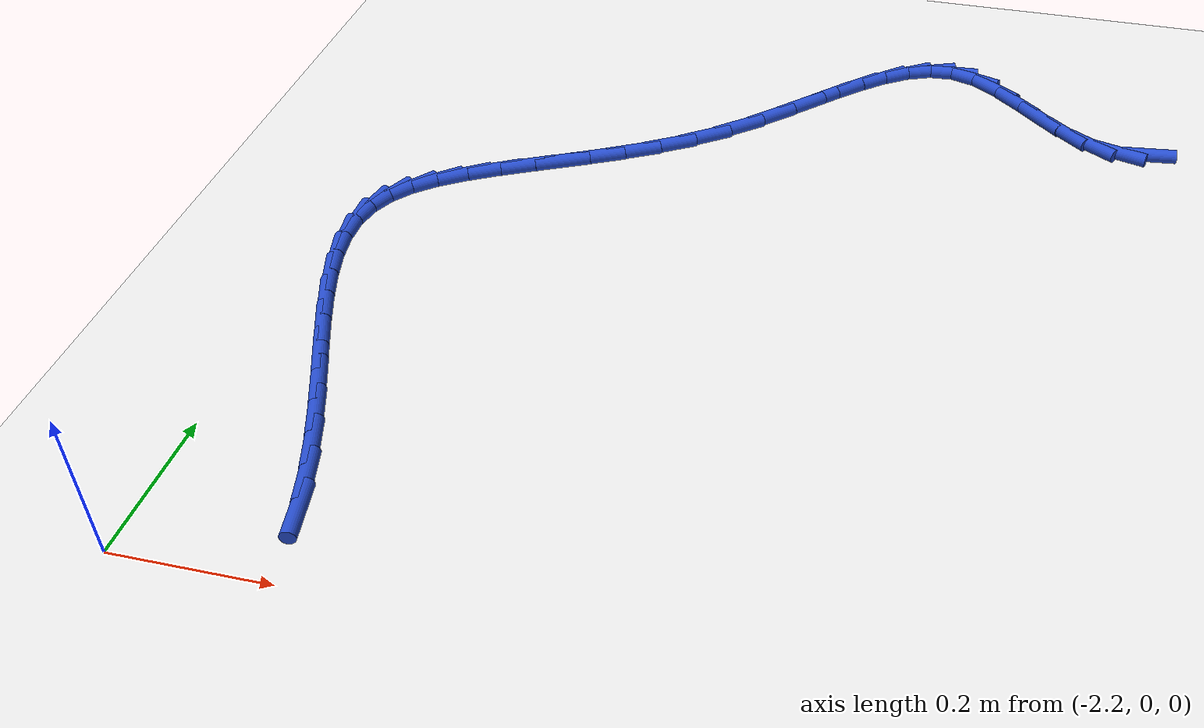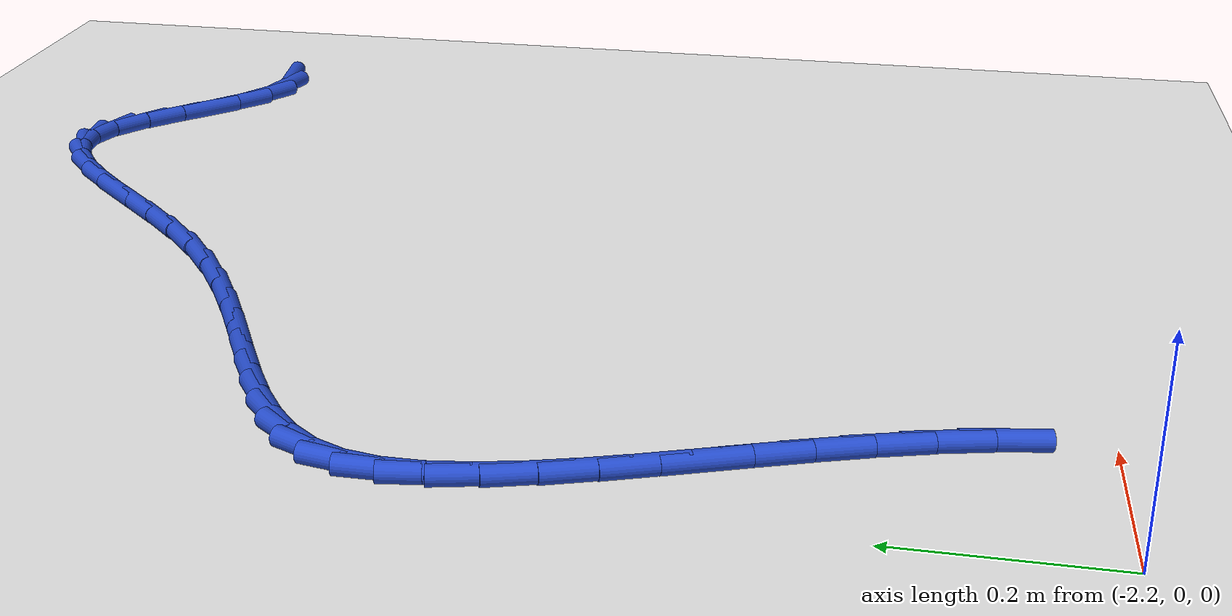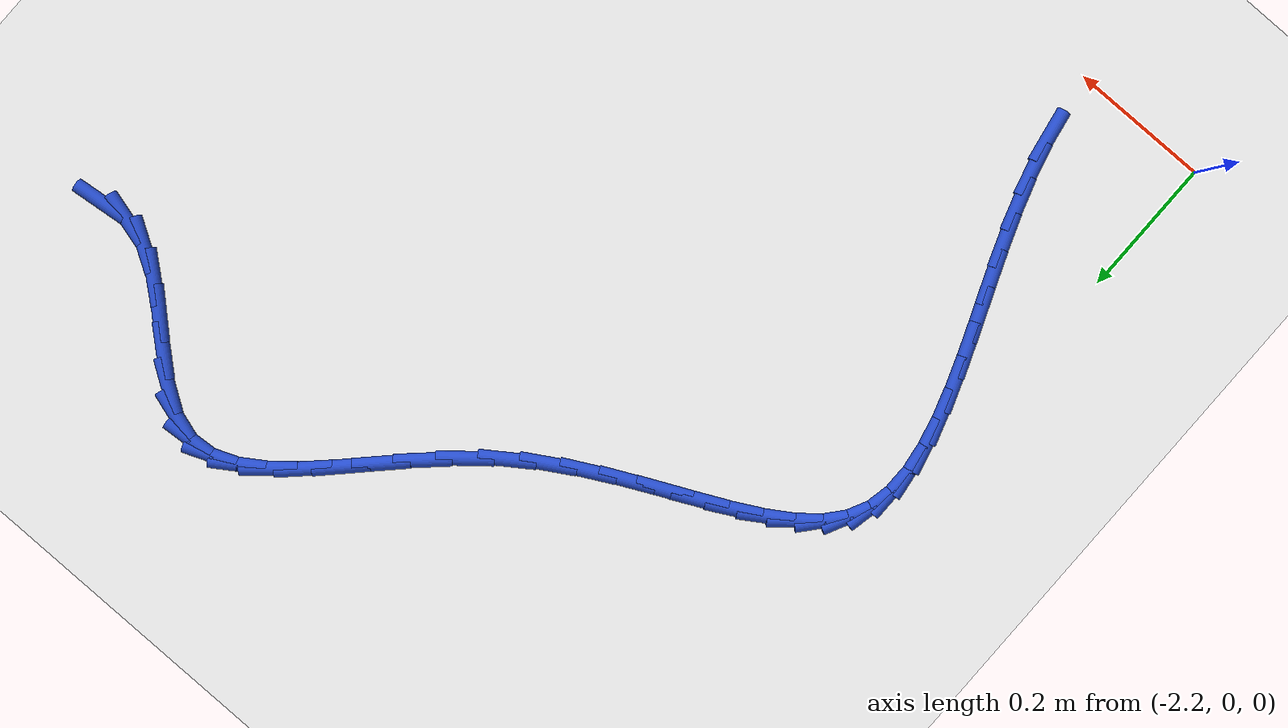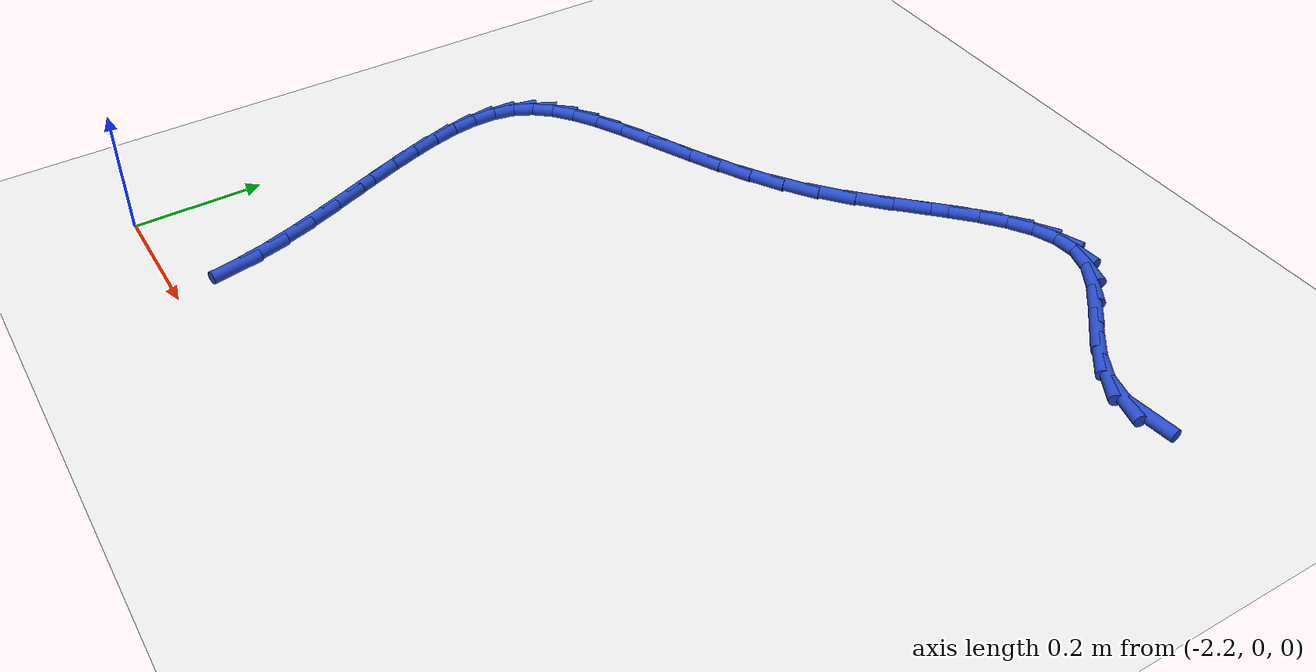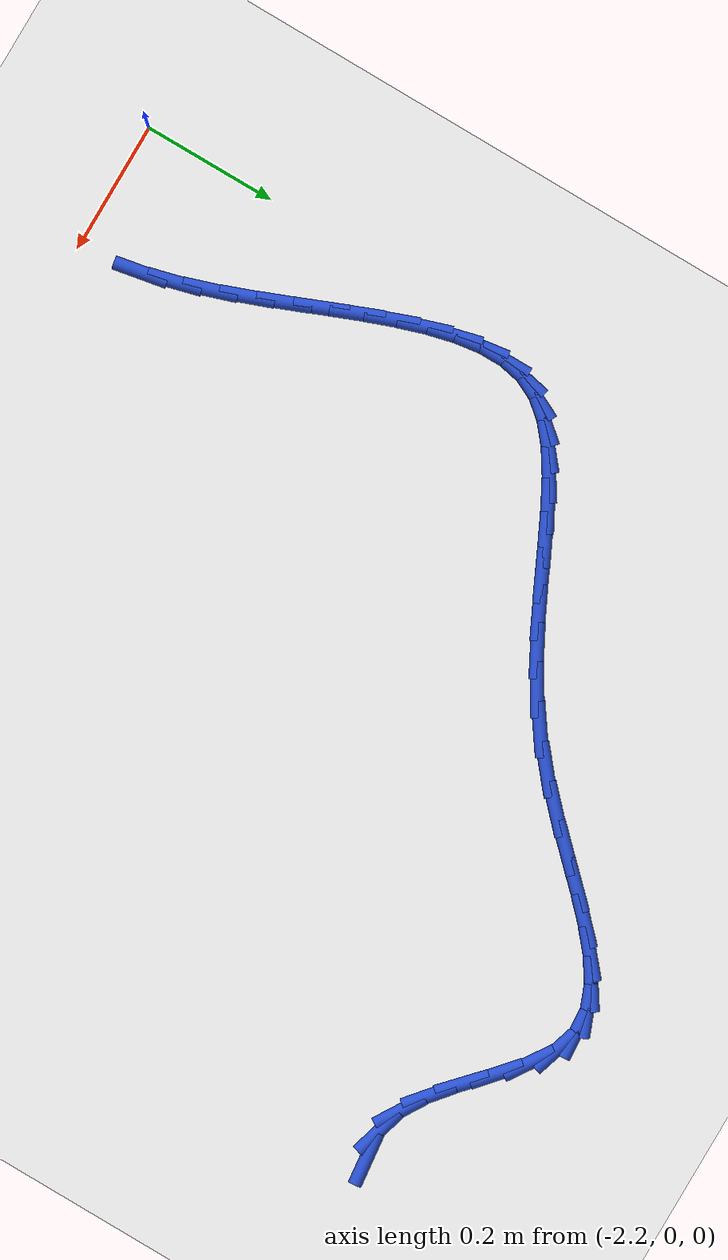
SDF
<sdf version="1.6">
 <world name="default">
  <model name="ground_plane">
   <static>1</static>
   <link name="link">
    <collision name="collision">
     <geometry><plane><normal>0 0 1</normal><size>100 100</size></plane></geometry>
     <surface><friction><ode><mu>100</mu><mu2>50</mu2></ode></friction></surface>
    </collision>
    <visual name="visual">
     <cast_shadows>0</cast_shadows>
     <geometry><plane><normal>0 0 1</normal><size>100 100</size></plane></geometry>
     <material>
      <script><uri>file://media/materials/scripts/gazebo.material</uri><name>Gazebo/WhiteGlow</name></script>
     </material>
    </visual>
   </link>
  </model>
  <model name="line">
   <link name="link_41">
    <pose>-1.103750602136416 1.0088746341379922 0.01 0 1.57 0.11099285961993188</pose>
    <collision name="collision">
     <geometry><cylinder><radius>0.01</radius><length>0.08</length></cylinder></geometry>
    </collision>
    <visual name="visual">
     <material>
      <script><name>Gazebo/Blue</name><uri>file://media/materials/scripts/gazebo.material</uri></script>
     </material>
     <geometry><cylinder><radius>0.01</radius><length>0.08</length></cylinder></geometry>
    </visual>
   </link>
   <link name="link_42">
    <pose>-1.145327510333015 1.0042408500538604 0.01 0 1.57 -0.2673106754995282</pose>
    <collision name="collision">
     <geometry><cylinder><radius>0.01</radius><length>0.08</length></cylinder></geometry>
    </collision>
    <visual name="visual">
     <material>
      <script><name>Gazebo/Blue</name><uri>file://media/materials/scripts/gazebo.material</uri></script>
     </material>
     <geometry><cylinder><radius>0.01</radius><length>0.08</length></cylinder></geometry>
    </visual>
   </link>
   <link name="link_43">
    <pose>-1.185801704541654 1.015325313987004 0.01 0 1.57 -0.5500484894430149</pose>
    <collision name="collision">
     <geometry><cylinder><radius>0.01</radius><length>0.08</length></cylinder></geometry>
    </collision>
    <visual name="visual">
     <material>
      <script><name>Gazebo/Blue</name><uri>file://media/materials/scripts/gazebo.material</uri></script>
     </material>
     <geometry><cylinder><radius>0.01</radius><length>0.08</length></cylinder></geometry>
    </visual>
   </link>
   <link name="link_44">
    <pose>-1.2251092704457418 1.0394276101067481 0.01 0 1.57 -0.6948070857699192</pose>
    <collision name="collision">
     <geometry><cylinder><radius>0.01</radius><length>0.08</length></cylinder></geometry>
    </collision>
    <visual name="visual">
     <material>
      <script><name>Gazebo/Blue</name><uri>file://media/materials/scripts/gazebo.material</uri></script>
     </material>
     <geometry><cylinder><radius>0.01</radius><length>0.08</length></cylinder></geometry>
    </visual>
   </link>
   <link name="link_45">
    <pose>-1.2633729558371893 1.071318476171559 0.01 0 1.57 -0.7449077804855623</pose>
    <collision name="collision">
     <geometry><cylinder><radius>0.01</radius><length>0.08</length></cylinder></geometry>
    </collision>
    <visual name="visual">
     <material>
      <script><name>Gazebo/Blue</name><uri>file://media/materials/scripts/gazebo.material</uri></script>
     </material>
     <geometry><cylinder><radius>0.01</radius><length>0.08</length></cylinder></geometry>
    </visual>
   </link>
   <link name="link_46">
    <pose>-1.3007165795532272 1.1057541397153545 0.01 0 1.57 -0.7150632096865299</pose>
    <collision name="collision">
     <geometry><cylinder><radius>0.01</radius><length>0.08</length></cylinder></geometry>
    </collision>
    <visual name="visual">
     <material>
      <script><name>Gazebo/Blue</name><uri>file://media/materials/scripts/gazebo.material</uri></script>
     </material>
     <geometry><cylinder><radius>0.01</radius><length>0.08</length></cylinder></geometry>
    </visual>
   </link>
   <link name="link_47">
    <pose>-1.337263960431084 1.1374908282720522 0.01 0 1.57 -0.5856310860886405</pose>
    <collision name="collision">
     <geometry><cylinder><radius>0.01</radius><length>0.08</length></cylinder></geometry>
    </collision>
    <visual name="visual">
     <material>
      <script><name>Gazebo/Blue</name><uri>file://media/materials/scripts/gazebo.material</uri></script>
     </material>
     <geometry><cylinder><radius>0.01</radius><length>0.08</length></cylinder></geometry>
    </visual>
   </link>
   <link name="link_48">
    <pose>-1.3731389173079915 1.16128476937557 0.01 0 1.57 -0.30109135553639543</pose>
    <collision name="collision">
     <geometry><cylinder><radius>0.01</radius><length>0.08</length></cylinder></geometry>
    </collision>
    <visual name="visual">
     <material>
      <script><name>Gazebo/Blue</name><uri>file://media/materials/scripts/gazebo.material</uri></script>
     </material>
     <geometry><cylinder><radius>0.01</radius><length>0.08</length></cylinder></geometry>
    </visual>
   </link>
   <link name="link_49">
    <pose>-1.4084746636536947 1.1722576649102554 0.01 0 1.57 0.07181933834771394</pose>
    <collision name="collision">
     <geometry><cylinder><radius>0.01</radius><length>0.08</length></cylinder></geometry>
    </collision>
    <visual name="visual">
     <material>
      <script><name>Gazebo/Blue</name><uri>file://media/materials/scripts/gazebo.material</uri></script>
     </material>
     <geometry><cylinder><radius>0.01</radius><length>0.08</length></cylinder></geometry>
    </visual>
   </link>
   <link name="link_50">
    <pose>-1.4435125222052843 1.1697369336089687 0.01 0 1.57 0.3798571072307815</pose>
    <collision name="collision">
     <geometry><cylinder><radius>0.01</radius><length>0.08</length></cylinder></geometry>
    </collision>
    <visual name="visual">
     <material>
      <script><name>Gazebo/Blue</name><uri>file://media/materials/scripts/gazebo.material</uri></script>
     </material>
     <geometry><cylinder><radius>0.01</radius><length>0.08</length></cylinder></geometry>
    </visual>
   </link>
   <link name="link_51">
    <pose>-1.478563043257293 1.1557431167450538 0.01 0 1.57 0.5844545792556328</pose>
    <collision name="collision">
     <geometry><cylinder><radius>0.01</radius><length>0.08</length></cylinder></geometry>
    </collision>
    <visual name="visual">
     <material>
      <script><name>Gazebo/Blue</name><uri>file://media/materials/scripts/gazebo.material</uri></script>
     </material>
     <geometry><cylinder><radius>0.01</radius><length>0.08</length></cylinder></geometry>
    </visual>
   </link>
   <link name="link_52">
    <pose>-1.5139379077421848 1.1323407401929177 0.01 0 1.57 0.706701061994898</pose>
    <collision name="collision">
     <geometry><cylinder><radius>0.01</radius><length>0.08</length></cylinder></geometry>
    </collision>
    <visual name="visual">
     <material>
      <script><name>Gazebo/Blue</name><uri>file://media/materials/scripts/gazebo.material</uri></script>
     </material>
     <geometry><cylinder><radius>0.01</radius><length>0.08</length></cylinder></geometry>
    </visual>
   </link>
   <link name="link_53">
    <pose>-1.5499487965924246 1.1015943298269695 0.01 0 1.57 0.7726197663643234</pose>
    <collision name="collision">
     <geometry><cylinder><radius>0.01</radius><length>0.08</length></cylinder></geometry>
    </collision>
    <visual name="visual">
     <material>
      <script><name>Gazebo/Blue</name><uri>file://media/materials/scripts/gazebo.material</uri></script>
     </material>
     <geometry><cylinder><radius>0.01</radius><length>0.08</length></cylinder></geometry>
    </visual>
   </link>
   <link name="link_54">
    <pose>-1.586907390740476 1.0655684115216166 0.01 0 1.57 0.798603370126141</pose>
    <collision name="collision">
     <geometry><cylinder><radius>0.01</radius><length>0.08</length></cylinder></geometry>
    </collision>
    <visual name="visual">
     <material>
      <script><name>Gazebo/Blue</name><uri>file://media/materials/scripts/gazebo.material</uri></script>
     </material>
     <geometry><cylinder><radius>0.01</radius><length>0.08</length></cylinder></geometry>
    </visual>
   </link>
   <link name="link_55">
    <pose>-1.625125371118803 1.0263275111512673 0.01 0 1.57 0.7929099450823983</pose>
    <collision name="collision">
     <geometry><cylinder><radius>0.01</radius><length>0.08</length></cylinder></geometry>
    </collision>
    <visual name="visual">
     <material>
      <script><name>Gazebo/Blue</name><uri>file://media/materials/scripts/gazebo.material</uri></script>
     </material>
     <geometry><cylinder><radius>0.01</radius><length>0.08</length></cylinder></geometry>
    </visual>
   </link>
   <link name="link_56">
    <pose>-1.6649144186598703 0.9859361545903289 0.01 0 1.57 0.7583618253003256</pose>
    <collision name="collision">
     <geometry><cylinder><radius>0.01</radius><length>0.08</length></cylinder></geometry>
    </collision>
    <visual name="visual">
     <material>
      <script><name>Gazebo/Blue</name><uri>file://media/materials/scripts/gazebo.material</uri></script>
     </material>
     <geometry><cylinder><radius>0.01</radius><length>0.08</length></cylinder></geometry>
    </visual>
   </link>
   <link name="link_57">
    <pose>-1.7065862142961419 0.9464588677132103 0.01 0 1.57 0.6940042047772175</pose>
    <collision name="collision">
     <geometry><cylinder><radius>0.01</radius><length>0.08</length></cylinder></geometry>
    </collision>
    <visual name="visual">
     <material>
      <script><name>Gazebo/Blue</name><uri>file://media/materials/scripts/gazebo.material</uri></script>
     </material>
     <geometry><cylinder><radius>0.01</radius><length>0.08</length></cylinder></geometry>
    </visual>
   </link>
   <link name="link_58">
    <pose>-1.750451790681399 0.9099587492793393 0.01 0 1.57 0.6097994945973204</pose>
    <collision name="collision">
     <geometry><cylinder><radius>0.01</radius><length>0.08</length></cylinder></geometry>
    </collision>
    <visual name="visual">
     <material>
      <script><name>Gazebo/Blue</name><uri>file://media/materials/scripts/gazebo.material</uri></script>
     </material>
     <geometry><cylinder><radius>0.01</radius><length>0.08</length></cylinder></geometry>
    </visual>
   </link>
   <link name="link_59">
    <pose>-1.79649961226512 0.8777887992454287 0.01 0 1.57 0.539164161176824</pose>
    <collision name="collision">
     <geometry><cylinder><radius>0.01</radius><length>0.08</length></cylinder></geometry>
    </collision>
    <visual name="visual">
     <material>
      <script><name>Gazebo/Blue</name><uri>file://media/materials/scripts/gazebo.material</uri></script>
     </material>
     <geometry><cylinder><radius>0.01</radius><length>0.08</length></cylinder></geometry>
    </visual>
   </link>
   <link name="link_60">
    <pose>-1.8438744495910824 0.8494447172381937 0.01 0 1.57 0.48794612212520955</pose>
    <collision name="collision">
     <geometry><cylinder><radius>0.01</radius><length>0.08</length></cylinder></geometry>
    </collision>
    <visual name="visual">
     <material>
      <script><name>Gazebo/Blue</name><uri>file://media/materials/scripts/gazebo.material</uri></script>
     </material>
     <geometry><cylinder><radius>0.01</radius><length>0.08</length></cylinder></geometry>
    </visual>
   </link>
   <link name="link_61">
    <pose>-1.891584837356002 0.8241222944910426 0.01 0 1.57 0.45644271564045774</pose>
    <collision name="collision">
     <geometry><cylinder><radius>0.01</radius><length>0.08</length></cylinder></geometry>
    </collision>
    <visual name="visual">
     <material>
      <script><name>Gazebo/Blue</name><uri>file://media/materials/scripts/gazebo.material</uri></script>
     </material>
     <geometry><cylinder><radius>0.01</radius><length>0.08</length></cylinder></geometry>
    </visual>
   </link>
   <link name="link_62">
    <pose>-1.9386393102565944 0.8010173222373854 0.01 0 1.57 0.4456626570988399</pose>
    <collision name="collision">
     <geometry><cylinder><radius>0.01</radius><length>0.08</length></cylinder></geometry>
    </collision>
    <visual name="visual">
     <material>
      <script><name>Gazebo/Blue</name><uri>file://media/materials/scripts/gazebo.material</uri></script>
     </material>
     <geometry><cylinder><radius>0.01</radius><length>0.08</length></cylinder></geometry>
    </visual>
   </link>
   <link name="link_63">
    <pose>-1.9840464029895775 0.7793255917106305 0.01 0 1.57 0.45799341398217</pose>
    <collision name="collision">
     <geometry><cylinder><radius>0.01</radius><length>0.08</length></cylinder></geometry>
    </collision>
    <visual name="visual">
     <material>
      <script><name>Gazebo/Blue</name><uri>file://media/materials/scripts/gazebo.material</uri></script>
     </material>
     <geometry><cylinder><radius>0.01</radius><length>0.08</length></cylinder></geometry>
    </visual>
   </link>
   <link name="link_64">
    <pose>-2.0268146502516657 0.7582428941441873 0.01 0 1.57 0.4979654377503438</pose>
    <collision name="collision">
     <geometry><cylinder><radius>0.01</radius><length>0.08</length></cylinder></geometry>
    </collision>
    <visual name="visual">
     <material>
      <script><name>Gazebo/Blue</name><uri>file://media/materials/scripts/gazebo.material</uri></script>
     </material>
     <geometry><cylinder><radius>0.01</radius><length>0.08</length></cylinder></geometry>
    </visual>
   </link>
   <link name="link_65">
    <pose>-2.065952586739577 0.7369650207714649 0.01 0 1.57 0.573145476328834</pose>
    <collision name="collision">
     <geometry><cylinder><radius>0.01</radius><length>0.08</length></cylinder></geometry>
    </collision>
    <visual name="visual">
     <material>
      <script><name>Gazebo/Blue</name><uri>file://media/materials/scripts/gazebo.material</uri></script>
     </material>
     <geometry><cylinder><radius>0.01</radius><length>0.08</length></cylinder></geometry>
    </visual>
   </link>
   <link name="link_66">
    <pose>-2.100468747150028 0.7146877628258718 0.01 0 1.57 0.694637917948779</pose>
    <collision name="collision">
     <geometry><cylinder><radius>0.01</radius><length>0.08</length></cylinder></geometry>
    </collision>
    <visual name="visual">
     <material>
      <script><name>Gazebo/Blue</name><uri>file://media/materials/scripts/gazebo.material</uri></script>
     </material>
     <geometry><cylinder><radius>0.01</radius><length>0.08</length></cylinder></geometry>
    </visual>
   </link>
   <link name="link_67">
    <pose>-2.129371666179733 0.6906069115408172 0.01 0 1.57 0.8747842006141604</pose>
    <collision name="collision">
     <geometry><cylinder><radius>0.01</radius><length>0.08</length></cylinder></geometry>
    </collision>
    <visual name="visual">
     <material>
      <script><name>Gazebo/Blue</name><uri>file://media/materials/scripts/gazebo.material</uri></script>
     </material>
     <geometry><cylinder><radius>0.01</radius><length>0.08</length></cylinder></geometry>
    </visual>
   </link>
   <link name="link_68">
    <pose>-2.151669878525411 0.6639182581497103 0.01 0 1.57 1.1161459454538287</pose>
    <collision name="collision">
     <geometry><cylinder><radius>0.01</radius><length>0.08</length></cylinder></geometry>
    </collision>
    <visual name="visual">
     <material>
      <script><name>Gazebo/Blue</name><uri>file://media/materials/scripts/gazebo.material</uri></script>
     </material>
     <geometry><cylinder><radius>0.01</radius><length>0.08</length></cylinder></geometry>
    </visual>
   </link>
   <link name="link_69">
    <pose>-2.166380612444159 0.6338228661180262 0.01 0 1.57 1.371564963683134</pose>
    <collision name="collision">
     <geometry><cylinder><radius>0.01</radius><length>0.08</length></cylinder></geometry>
    </collision>
    <visual name="visual">
     <material>
      <script><name>Gazebo/Blue</name><uri>file://media/materials/scripts/gazebo.material</uri></script>
     </material>
     <geometry><cylinder><radius>0.01</radius><length>0.08</length></cylinder></geometry>
    </visual>
   </link>
   <link name="link_70">
    <pose>-2.1732206761025865 0.5999460609476662 0.01 0 1.57 -1.567781966604484</pose>
    <collision name="collision">
     <geometry><cylinder><radius>0.01</radius><length>0.08</length></cylinder></geometry>
    </collision>
    <visual name="visual">
     <material>
      <script><name>Gazebo/Blue</name><uri>file://media/materials/scripts/gazebo.material</uri></script>
     </material>
     <geometry><cylinder><radius>0.01</radius><length>0.08</length></cylinder></geometry>
    </visual>
   </link>
   <link name="link_71">
    <pose>-2.1731082270705904 0.562641729577716 0.01 0 1.57 -1.422330211176339</pose>
    <collision name="collision">
     <geometry><cylinder><radius>0.01</radius><length>0.08</length></cylinder></geometry>
    </collision>
    <visual name="visual">
     <material>
      <script><name>Gazebo/Blue</name><uri>file://media/materials/scripts/gazebo.material</uri></script>
     </material>
     <geometry><cylinder><radius>0.01</radius><length>0.08</length></cylinder></geometry>
    </visual>
   </link>
   <link name="link_72">
    <pose>-2.1670797629348977 0.5223355265550066 0.01 0 1.57 -1.321709398650757</pose>
    <collision name="collision">
     <geometry><cylinder><radius>0.01</radius><length>0.08</length></cylinder></geometry>
    </collision>
    <visual name="visual">
     <material>
      <script><name>Gazebo/Blue</name><uri>file://media/materials/scripts/gazebo.material</uri></script>
     </material>
     <geometry><cylinder><radius>0.01</radius><length>0.08</length></cylinder></geometry>
    </visual>
   </link>
   <link name="link_73">
    <pose>-2.156171781282237 0.4794531064263683 0.01 0 1.57 -1.254250785126707</pose>
    <collision name="collision">
     <geometry><cylinder><radius>0.01</radius><length>0.08</length></cylinder></geometry>
    </collision>
    <visual name="visual">
     <material>
      <script><name>Gazebo/Blue</name><uri>file://media/materials/scripts/gazebo.material</uri></script>
     </material>
     <geometry><cylinder><radius>0.01</radius><length>0.08</length></cylinder></geometry>
    </visual>
   </link>
   <link name="link_74">
    <pose>-2.141420779699339 0.43442012373863326 0.01 0 1.57 -1.2115885726325022</pose>
    <collision name="collision">
     <geometry><cylinder><radius>0.01</radius><length>0.08</length></cylinder></geometry>
    </collision>
    <visual name="visual">
     <material>
      <script><name>Gazebo/Blue</name><uri>file://media/materials/scripts/gazebo.material</uri></script>
     </material>
     <geometry><cylinder><radius>0.01</radius><length>0.08</length></cylinder></geometry>
    </visual>
   </link>
   <link name="link_75">
    <pose>-2.12386325577293 0.3876622330386319 0.01 0 1.57 -1.1884133707221465</pose>
    <collision name="collision">
     <geometry><cylinder><radius>0.01</radius><length>0.08</length></cylinder></geometry>
    </collision>
    <visual name="visual">
     <material>
      <script><name>Gazebo/Blue</name><uri>file://media/materials/scripts/gazebo.material</uri></script>
     </material>
     <geometry><cylinder><radius>0.01</radius><length>0.08</length></cylinder></geometry>
    </visual>
   </link>
   <link name="link_76">
    <pose>-2.104535707089741 0.33960508887319507 0.01 0 1.57 -1.1817083478428339</pose>
    <collision name="collision">
     <geometry><cylinder><radius>0.01</radius><length>0.08</length></cylinder></geometry>
    </collision>
    <visual name="visual">
     <material>
      <script><name>Gazebo/Blue</name><uri>file://media/materials/scripts/gazebo.material</uri></script>
     </material>
     <geometry><cylinder><radius>0.01</radius><length>0.08</length></cylinder></geometry>
    </visual>
   </link>
   <link name="link_77">
    <pose>-2.084474631236499 0.2906743457891544 0.01 0 1.57 -1.1901741984455527</pose>
    <collision name="collision">
     <geometry><cylinder><radius>0.01</radius><length>0.08</length></cylinder></geometry>
    </collision>
    <visual name="visual">
     <material>
      <script><name>Gazebo/Blue</name><uri>file://media/materials/scripts/gazebo.material</uri></script>
     </material>
     <geometry><cylinder><radius>0.01</radius><length>0.08</length></cylinder></geometry>
    </visual>
   </link>
   <link name="link_78">
    <pose>-2.0647165257999323 0.24129565833334027 0.01 0 1.57 -1.2139211062499127</pose>
    <collision name="collision">
     <geometry><cylinder><radius>0.01</radius><length>0.08</length></cylinder></geometry>
    </collision>
    <visual name="visual">
     <material>
      <script><name>Gazebo/Blue</name><uri>file://media/materials/scripts/gazebo.material</uri></script>
     </material>
     <geometry><cylinder><radius>0.01</radius><length>0.08</length></cylinder></geometry>
    </visual>
   </link>
   <link name="link_79">
    <pose>-2.0462978883667713 0.1918946810525844 0.01 0 1.57 -1.2543795109562592</pose>
    <collision name="collision">
     <geometry><cylinder><radius>0.01</radius><length>0.08</length></cylinder></geometry>
    </collision>
    <visual name="visual">
     <material>
      <script><name>Gazebo/Blue</name><uri>file://media/materials/scripts/gazebo.material</uri></script>
     </material>
     <geometry><cylinder><radius>0.01</radius><length>0.08</length></cylinder></geometry>
    </visual>
   </link>
   <link name="link_80">
    <pose>-2.030255216523744 0.14289706849371756 0.01 0 1.57 -1.3140357951877089</pose>
    <collision name="collision">
     <geometry><cylinder><radius>0.01</radius><length>0.08</length></cylinder></geometry>
    </collision>
    <visual name="visual">
     <material>
      <script><name>Gazebo/Blue</name><uri>file://media/materials/scripts/gazebo.material</uri></script>
     </material>
     <geometry><cylinder><radius>0.01</radius><length>0.08</length></cylinder></geometry>
    </visual>
   </link>
   <link name="link_81">
    <pose>-2.0176063030357185 0.0947209720609338 0.01 0 1.57 -1.384823080943124</pose>
    <collision name="collision">
     <geometry><cylinder><radius>0.01</radius><length>0.08</length></cylinder></geometry>
    </collision>
    <visual name="visual">
     <material>
      <script><name>Gazebo/Blue</name><uri>file://media/materials/scripts/gazebo.material</uri></script>
     </material>
     <geometry><cylinder><radius>0.01</radius><length>0.08</length></cylinder></geometry>
    </visual>
   </link>
  </model>
 </world>
</sdf>
